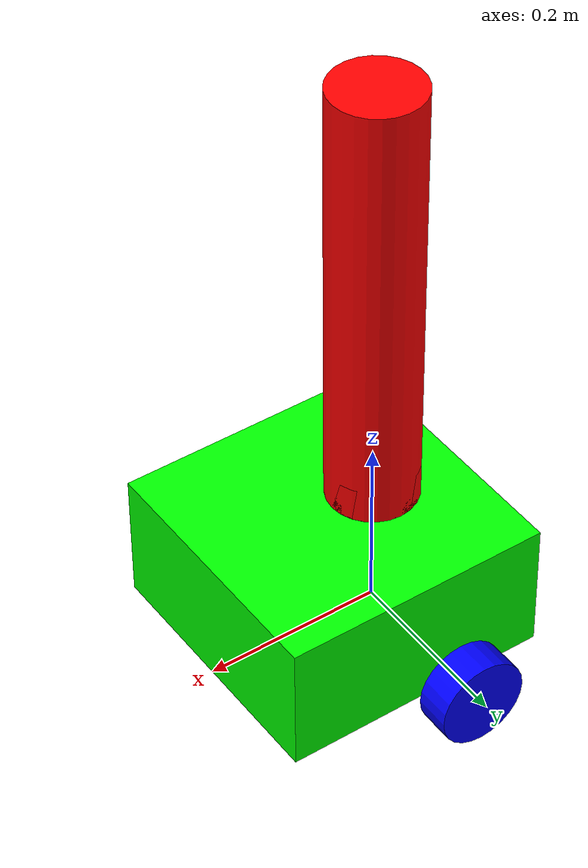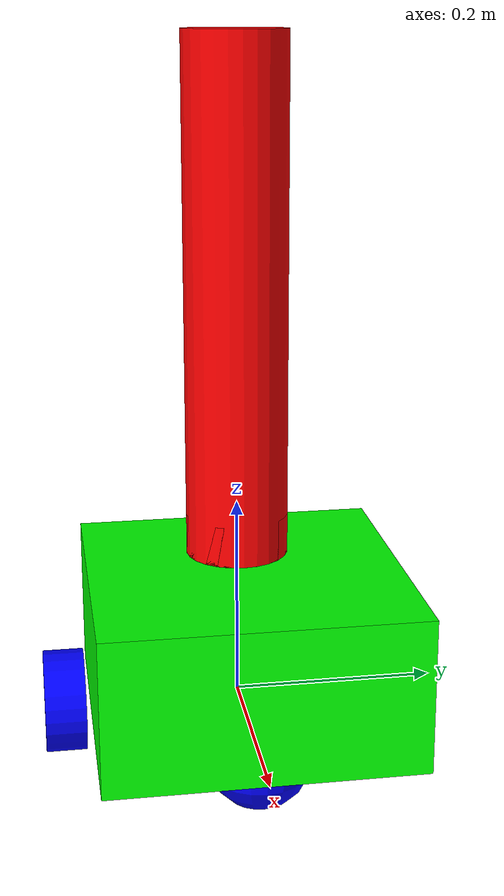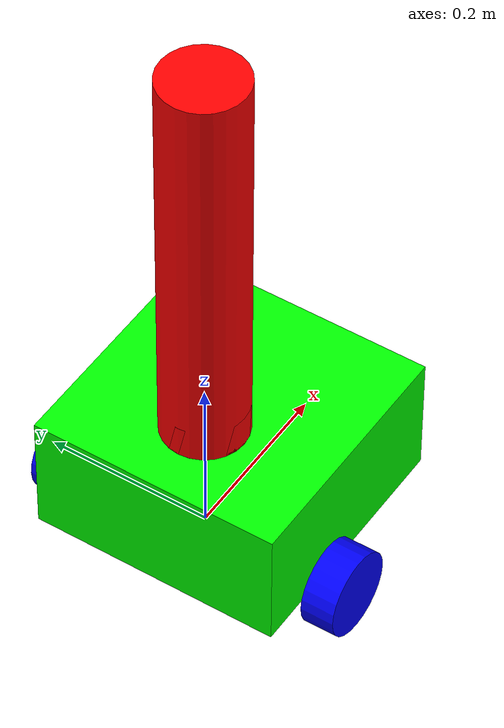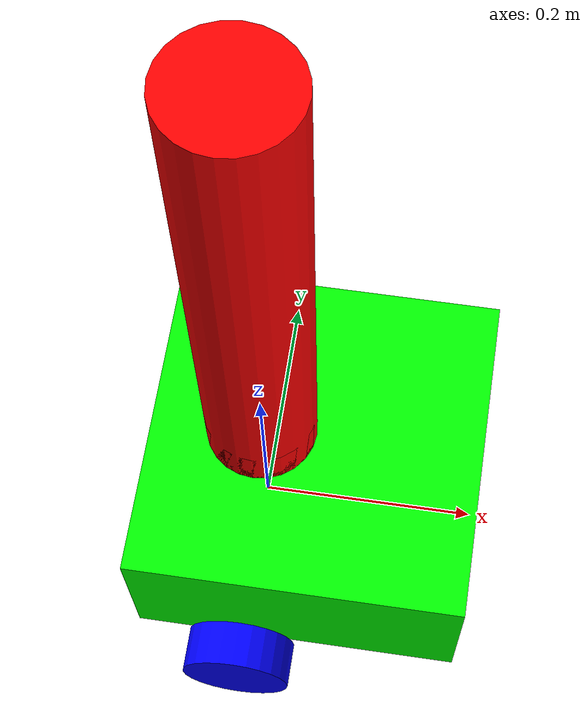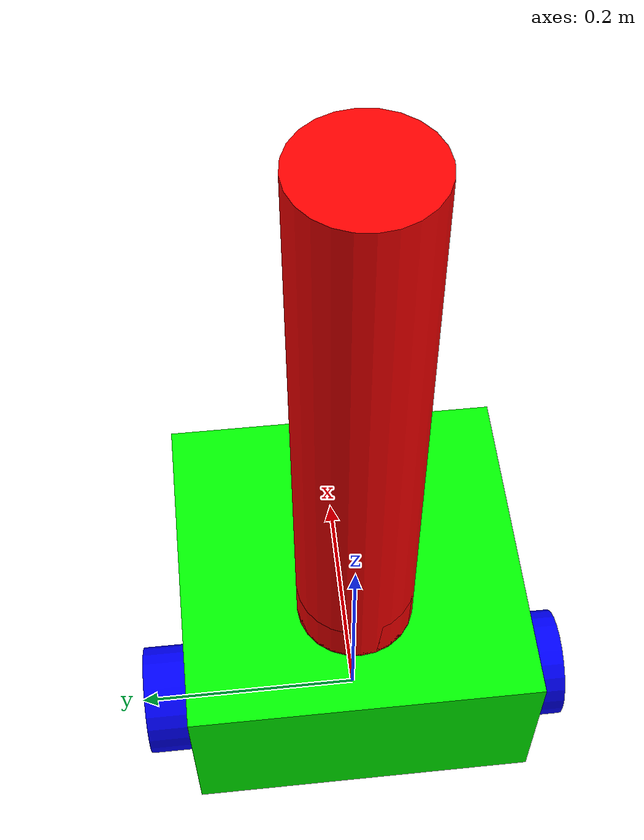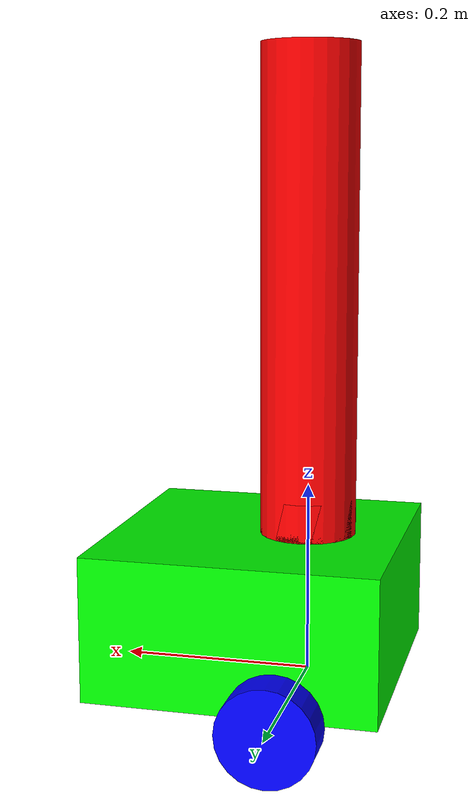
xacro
<?xml version="1.0"?>
<robot xmlns:xacro="http://www.ros.org/wiki/xacro" name="robot">

    <xacro:property name="chassis_offset" value="-0.1" />
    <xacro:property name="chassis_width" value="0.3" />
    <xacro:property name="chassis_height" value="0.15" />
    <xacro:property name="chassis_mass" value="0.5" />

    <xacro:property name="wheel_offset" value="0.175" />
    <xacro:property name="wheel_radius" value="0.05" />
    <xacro:property name="wheel_length" value="0.04" />
    <xacro:property name="wheel_mass" value="0.1" />

    <xacro:property name="caster_wheel_offset" value="0.24" />
    <xacro:property name="caster_wheel_radius" value="0.05" />
    <xacro:property name="caster_wheel_mass" value="0.1" />

    <xacro:property name="lidar_radius" value="0.05" />
    <xacro:property name="lidar_height" value="0.04" />

    <!--    xacro files that need to be included -->
    <xacro:include filename="colours.xacro" />
    <xacro:include filename="inertial.xacro" />
    <xacro:include filename="gazebo.xacro" />
    <xacro:include filename="robot_core.xacro" />
    <xacro:include filename="lidar.xacro" />
    <xacro:include filename="depth_camera.xacro" />

</robot>

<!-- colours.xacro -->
<robot xmlns:xacro="http://www.ros.org/wiki/xacro" >

    <material name="red">
        <color rgba="1 0 0 1"/>
    </material>

    <material name="green">
        <color rgba="0 1 0 1"/>
    </material>

    <material name="blue">
        <color rgba="0 0 1 1"/>
    </material>

    <material name="yellow">
        <color rgba="1 1 0 1"/>
    </material>

    <material name="magenta">
        <color rgba="1 0 1 1"/>
    </material>

    <material name="cyan">
        <color rgba="0 1 1 1"/>
    </material>

    <material name="white">
        <color rgba="1 1 1 1"/>
    </material>

    <material name="orange">
        <color rgba="1 0.3 0.1 1"/>
    </material>

    <material name="Blue">
        <color rgba="0.2 0.2 1 1"/>
    </material>

    <material name="black">
        <color rgba="0 0 0 1"/>
    </material>

</robot>

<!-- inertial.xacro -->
<robot xmlns:xacro="http://www.ros.org/wiki/xacro" >

    <xacro:macro name="inertial_sphere" params="mass radius *origin">
        <inertial>
            <xacro:insert_block name="origin"/>
            <mass value="${mass}" />
            <inertia ixx="${(2/5) * mass * (radius*radius)}" ixy="0.0" ixz="0.0"
                iyy="${(2/5) * mass * (radius*radius)}" iyz="0.0"
                izz="${(2/5) * mass * (radius*radius)}" />
        </inertial>
    </xacro:macro>

    <xacro:macro name="inertial_box" params="mass x y z *origin">
        <inertial>
            <xacro:insert_block name="origin"/>
            <mass value="${mass}" />
            <inertia ixx="${(1/12) * mass * (y*y+z*z)}" ixy="0.0" ixz="0.0"
                iyy="${(1/12) * mass * (x*x+z*z)}" iyz="0.0"
                izz="${(1/12) * mass * (x*x+y*y)}" />
        </inertial>
    </xacro:macro>

    <xacro:macro name="inertial_cylinder" params="mass length radius *origin">
        <inertial>
            <xacro:insert_block name="origin"/>
            <mass value="${mass}" />
            <inertia ixx="${(1/12) * mass * (3*radius*radius + length*length)}"
                ixy="0.0" ixz="0.0"
                iyy="${(1/12) * mass * (3*radius*radius + length*length)}"
                iyz="0.0" izz="${(1/2) * mass * (radius*radius)}" />
        </inertial>
    </xacro:macro>
</robot>

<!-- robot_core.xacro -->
<robot xmlns:xacro="http://www.ros.org/wiki/xacro">

    <!--    base link which is empty-->
    <link name="base_link">
    </link>

    <!--    Chassis-->
    <!--    chassis joint which is of fixed type to base with an offset of -0.1-->
    <joint name="chassis_joint" type="fixed">
        <parent link="base_link"/>
        <child link="chassis"/>
        <origin xyz="${chassis_offset} 0 0"/>
    </joint>

    <!--    chassis link which is the is a square that is the main body of the robot
            describes its visual, collision and inertia-->
    <link name="chassis">
        <visual>
            <origin xyz="${chassis_width/2} 0 ${chassis_height/2}" rpy="0 0 0"/>
            <geometry>
                <box size="${chassis_width} ${chassis_width} ${chassis_height}"/>
            </geometry>
            <material name="green"/>
        </visual>
        <collision>
            <origin xyz="${chassis_width/2} 0 ${chassis_height/2}" rpy="0 0 0"/>
            <geometry>
                <box size="${chassis_width} ${chassis_width} ${chassis_height}"/>
            </geometry>
        </collision>
        <xacro:inertial_box mass="${chassis_mass}" x="${chassis_width}" y="${chassis_width}" z="${chassis_height}">
            <origin xyz="${chassis_width/2} 0 ${chassis_height/2}" rpy="0 0 0"/>
        </xacro:inertial_box>
    </link>

    <!-- LEFT WHEEL -->
    <!--    Left wheel joint of type continuous can rotate continuously around al 360 degrees-->
    <joint name="left_wheel_joint" type="continuous">
        <parent link="base_link"/>
        <child link="left_wheel"/>
        <origin xyz="0 ${wheel_offset} 0" rpy="-${pi/2} 0 0"/>
        <axis xyz="0 0 1"/>
    </joint>

    <!--    Describing the visual, collision and inertia of the Left Wheel-->
    <link name="left_wheel">
        <visual>
            <geometry>
                <cylinder length="${wheel_length}" radius="${wheel_radius}" />
            </geometry>
            <material name="blue"/>
        </visual>
        <collision>
            <geometry>
                <cylinder length="${wheel_length}" radius="${wheel_radius}" />
            </geometry>
        </collision>
        <xacro:inertial_cylinder mass="${wheel_mass}" length="${wheel_length}" radius="${wheel_radius}">
            <origin xyz="0 0 0" rpy="0 0 0"/>
        </xacro:inertial_cylinder>
    </link>

    <!-- RIGHT WHEEL -->
    <!--    Right wheel joint of type continuous can rotate continuously around al 360 degrees-->
    <joint name="right_wheel_joint" type="continuous">
        <parent link="base_link"/>
        <child link="right_wheel"/>
        <origin xyz="0 -${wheel_offset} 0" rpy="${pi/2} 0 0"/>
        <axis xyz="0 0 -1"/>
    </joint>

    <!--    Describing the visual, collision and inertia of the Right Wheel-->
    <link name="right_wheel">
        <visual>
            <geometry>
                <cylinder length="${wheel_length}" radius="${wheel_radius}" />
            </geometry>
            <material name="blue"/>
        </visual>
        <collision>
            <geometry>
                <cylinder length="${wheel_length}" radius="${wheel_radius}" />
            </geometry>
        </collision>
        <xacro:inertial_cylinder mass="${wheel_mass}" length="${wheel_length}" radius="${wheel_radius}">
            <origin xyz="0 0 0" rpy="0 0 0"/>
        </xacro:inertial_cylinder>
    </link>

    <!-- CASTER WHEEL -->
    <!--    Caster Wheel of joint type fixed-->
    <joint name="caster_wheel_joint" type="fixed">
        <parent link="chassis"/>
        <child link="caster_wheel"/>
        <origin xyz="${caster_wheel_offset} 0 0" rpy="0 0 0"/>
    </joint>

    <!--    Describing the Caster Wheel to be a sphere with its visual, collision and inertia-->
    <link name="caster_wheel">
        <visual>
            <geometry>
                <sphere radius="${caster_wheel_radius}" />
            </geometry>
            <material name="blue"/>
        </visual>
        <collision>
            <geometry>
                <sphere radius="${caster_wheel_radius}" />
            </geometry>
        </collision>
        <xacro:inertial_sphere mass="${caster_wheel_mass}" radius="${caster_wheel_radius}">
            <origin xyz="0 0 0" rpy="0 0 0"/>
        </xacro:inertial_sphere>
    </link>

</robot>

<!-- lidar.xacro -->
<robot xmlns:xacro="http://www.ros.org/wiki/xacro" >
    <joint name="laser_joint" type="fixed">
        <parent link="chassis"/>
        <child link="laser_frame"/>
        <origin xyz="0.1 0 ${chassis_height + lidar_height/2}" rpy="0 0 0"/>
    </joint>

    <link name="laser_frame">
        <visual>
            <geometry>
                <cylinder radius="${lidar_radius}" length="${lidar_height}"/>
            </geometry>
            <material name="red"/>
        </visual>
        <collision>
            <geometry>
                <cylinder radius="${lidar_radius}" length="${lidar_height}"/>
            </geometry>
        </collision>
        <xacro:inertial_cylinder mass="0.1" length="${lidar_height}" radius="${lidar_radius}">
            <origin xyz="0 0 0" rpy="0 0 0"/>
        </xacro:inertial_cylinder>
    </link>

    <gazebo reference="laser_frame">
        <sensor name='lidar' type='gpu_lidar'>"
            <pose relative_to='laser_frame'>0 0 0 0 0 0</pose>
            <topic>lidar</topic>
            <update_rate>10</update_rate>
            <ray>
                <scan>
                    <horizontal>
                        <samples>360</samples>
                        <resolution>1</resolution>
                        <min_angle>-${pi}</min_angle>
                        <max_angle>${pi}</max_angle>
                    </horizontal>
                    <vertical>
                        <samples>1</samples>
                        <resolution>0.01</resolution>
                        <min_angle>0</min_angle>
                        <max_angle>0</max_angle>
                    </vertical>
                </scan>
                <range>
                    <min>${lidar_radius}</min>
                    <max>10.0</max>
                    <resolution>0.01</resolution>
                </range>
            </ray>
            <always_on>1</always_on>
            <visualize>true</visualize>
        </sensor>
    </gazebo>
</robot>

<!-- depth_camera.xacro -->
<robot xmlns:xacro="http://www.ros.org/wiki/xacro">

    <joint name="camera_joint" type="fixed">
        <parent link="chassis"/>
        <child link="camera_link"/>
        <origin xyz="0.1 0 ${chassis_height + .25}" rpy="0 0 0"/>
    </joint>

    <link name="camera_link">
        <visual>
            <geometry>
                <cylinder radius=".05" length="0.5"/>
            </geometry>
        <material name="red"/>
        </visual>
    </link>

    <joint name="camera_optical_joint" type="fixed">
        <origin xyz="0 0 0" rpy="${-pi/2} 0 ${-pi/2}" />
        <parent link="camera_link" />
        <child link="camera_link_optical" />
    </joint>

    <link name="camera_link_optical"></link>

    <gazebo reference="camera_link">
        <sensor name="camera" type="depth">
            <camera>
                <horizontal_fov>1.089</horizontal_fov>
                <image>
                    <format>R8G8B8</format>
                    <width>640</width>
                    <height>480</height>
                </image>
                <clip>
                    <near>0.05</near>
                    <far>8.0</far>
                </clip>
            </camera>
            <always_on>1</always_on>
            <update_rate>5</update_rate>
            <visualize>true</visualize>
            <topic>camera/depth/image_raw</topic>
        </sensor>
    </gazebo>

</robot>
